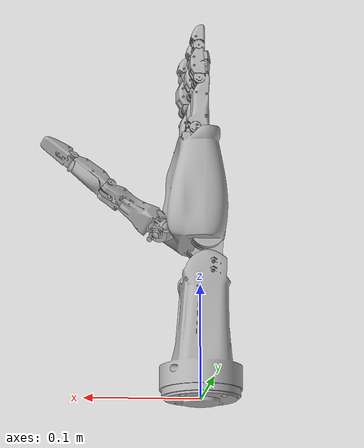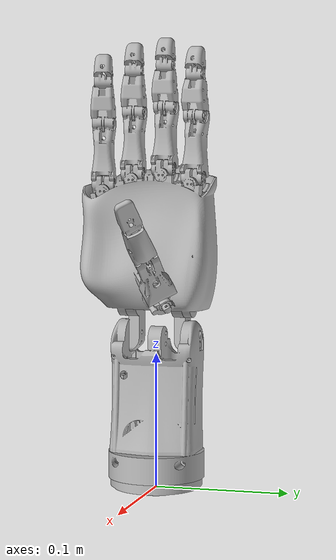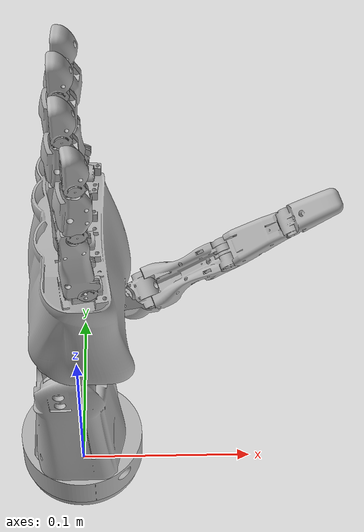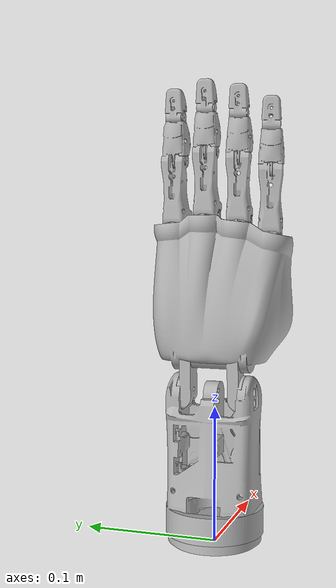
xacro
<?xml version="1.0" ?>
<robot name="dexhandv2_cobot_right" xmlns:xacro="http://www.ros.org/wiki/xacro">

<xacro:include filename="$(find dexhandv2_description)/urdf/materials.xacro" />
<xacro:include filename="$(find dexhandv2_description)/urdf/dexhandv2_cobot_right.trans" />
<xacro:include filename="$(find dexhandv2_description)/urdf/dexhandv2_cobot_right.gazebo" />
<link name="base_link">
  <inertial>
    <origin xyz="2.052703407136187e-15 2.220446049250313e-16 0.007619244404461584" rpy="0 0 0"/>
    <mass value="0.40106984932829953"/>
    <inertia ixx="0.000103" iyy="0.000103" izz="0.000181" ixy="0.0" iyz="0.0" ixz="0.0"/>
  </inertial>
  <visual>
    <origin xyz="0 0 0" rpy="0 0 0"/>
    <geometry>
      <mesh filename="package://dexhandv2_description/meshes/cobot_right/base_link.stl" scale="0.001 0.001 0.001"/>
    </geometry>
    <material name="silver"/>
  </visual>
  <collision>
    <origin xyz="0 0 0" rpy="0 0 0"/>
    <geometry>
      <mesh filename="package://dexhandv2_description/meshes/cobot_right/base_link.stl" scale="0.001 0.001 0.001"/>
    </geometry>
  </collision>
</link>

<link name="Index_Knuckle_1">
  <inertial>
    <origin xyz="-0.005617754616359744 -0.004262893684497563 0.0244593212098696" rpy="0 0 0"/>
    <mass value="0.057232258646826684"/>
    <inertia ixx="1.2e-05" iyy="1.1e-05" izz="2e-06" ixy="-0.0" iyz="-0.0" ixz="0.0"/>
  </inertial>
  <visual>
    <origin xyz="-0.006894 -0.034615 -0.230923" rpy="0 0 0"/>
    <geometry>
      <mesh filename="package://dexhandv2_description/meshes/cobot_right/Index_Knuckle_1.stl" scale="0.001 0.001 0.001"/>
    </geometry>
    <material name="silver"/>
  </visual>
  <collision>
    <origin xyz="-0.006894 -0.034615 -0.230923" rpy="0 0 0"/>
    <geometry>
      <mesh filename="package://dexhandv2_description/meshes/cobot_right/Index_Knuckle_1.stl" scale="0.001 0.001 0.001"/>
    </geometry>
  </collision>
</link>

<link name="Middle_Knuckle_1">
  <inertial>
    <origin xyz="-0.0053425374507652095 -0.004751344962067258 0.024431575198405636" rpy="0 0 0"/>
    <mass value="0.057232258646826684"/>
    <inertia ixx="1.2e-05" iyy="1.1e-05" izz="2e-06" ixy="0.0" iyz="0.0" ixz="0.0"/>
  </inertial>
  <visual>
    <origin xyz="-0.005646 -0.012104 -0.236978" rpy="0 0 0"/>
    <geometry>
      <mesh filename="package://dexhandv2_description/meshes/cobot_right/Middle_Knuckle_1.stl" scale="0.001 0.001 0.001"/>
    </geometry>
    <material name="silver"/>
  </visual>
  <collision>
    <origin xyz="-0.005646 -0.012104 -0.236978" rpy="0 0 0"/>
    <geometry>
      <mesh filename="package://dexhandv2_description/meshes/cobot_right/Middle_Knuckle_1.stl" scale="0.001 0.001 0.001"/>
    </geometry>
  </collision>
</link>

<link name="Ring_Knuckle_1">
  <inertial>
    <origin xyz="-0.004995552898363725 -0.005197955554373898 0.024413907325318923" rpy="0 0 0"/>
    <mass value="0.057232258646826684"/>
    <inertia ixx="1.2e-05" iyy="1.1e-05" izz="2e-06" ixy="0.0" iyz="0.0" ixz="0.0"/>
  </inertial>
  <visual>
    <origin xyz="-0.006759 0.01088 -0.233106" rpy="0 0 0"/>
    <geometry>
      <mesh filename="package://dexhandv2_description/meshes/cobot_right/Ring_Knuckle_1.stl" scale="0.001 0.001 0.001"/>
    </geometry>
    <material name="silver"/>
  </visual>
  <collision>
    <origin xyz="-0.006759 0.01088 -0.233106" rpy="0 0 0"/>
    <geometry>
      <mesh filename="package://dexhandv2_description/meshes/cobot_right/Ring_Knuckle_1.stl" scale="0.001 0.001 0.001"/>
    </geometry>
  </collision>
</link>

<link name="Pinky_Knuckle_1">
  <inertial>
    <origin xyz="-0.0038805527779705827 -0.005627871847661753 0.024520983733089308" rpy="0 0 0"/>
    <mass value="0.057232258646826684"/>
    <inertia ixx="1.2e-05" iyy="1.1e-05" izz="2e-06" ixy="0.0" iyz="0.0" ixz="0.0"/>
  </inertial>
  <visual>
    <origin xyz="-0.009742 0.032368 -0.224778" rpy="0 0 0"/>
    <geometry>
      <mesh filename="package://dexhandv2_description/meshes/cobot_right/Pinky_Knuckle_1.stl" scale="0.001 0.001 0.001"/>
    </geometry>
    <material name="silver"/>
  </visual>
  <collision>
    <origin xyz="-0.009742 0.032368 -0.224778" rpy="0 0 0"/>
    <geometry>
      <mesh filename="package://dexhandv2_description/meshes/cobot_right/Pinky_Knuckle_1.stl" scale="0.001 0.001 0.001"/>
    </geometry>
  </collision>
</link>

<link name="Index_Middle_1">
  <inertial>
    <origin xyz="-0.0013226867506370902 -0.007289091459419767 0.01408557787699416" rpy="0 0 0"/>
    <mass value="0.029055618634630877"/>
    <inertia ixx="2e-06" iyy="2e-06" izz="1e-06" ixy="-0.0" iyz="0.0" ixz="-0.0"/>
  </inertial>
  <visual>
    <origin xyz="-0.003362 -0.037608 -0.275941" rpy="0 0 0"/>
    <geometry>
      <mesh filename="package://dexhandv2_description/meshes/cobot_right/Index_Middle_1.stl" scale="0.001 0.001 0.001"/>
    </geometry>
    <material name="silver"/>
  </visual>
  <collision>
    <origin xyz="-0.003362 -0.037608 -0.275941" rpy="0 0 0"/>
    <geometry>
      <mesh filename="package://dexhandv2_description/meshes/cobot_right/Index_Middle_1.stl" scale="0.001 0.001 0.001"/>
    </geometry>
  </collision>
</link>

<link name="Middle_Middle_1">
  <inertial>
    <origin xyz="-0.0007483887502837826 -0.007382459502653912 0.01407915123683462" rpy="0 0 0"/>
    <mass value="0.029055618634630877"/>
    <inertia ixx="2e-06" iyy="2e-06" izz="1e-06" ixy="0.0" iyz="0.0" ixz="-0.0"/>
  </inertial>
  <visual>
    <origin xyz="-0.001646 -0.014754 -0.281978" rpy="0 0 0"/>
    <geometry>
      <mesh filename="package://dexhandv2_description/meshes/cobot_right/Middle_Middle_1.stl" scale="0.001 0.001 0.001"/>
    </geometry>
    <material name="silver"/>
  </visual>
  <collision>
    <origin xyz="-0.001646 -0.014754 -0.281978" rpy="0 0 0"/>
    <geometry>
      <mesh filename="package://dexhandv2_description/meshes/cobot_right/Middle_Middle_1.stl" scale="0.001 0.001 0.001"/>
    </geometry>
  </collision>
</link>

<link name="Ring_Middle_1">
  <inertial>
    <origin xyz="-0.0001527987693481221 -0.007419438842167106 0.014078367099663536" rpy="0 0 0"/>
    <mass value="0.029055618634630877"/>
    <inertia ixx="2e-06" iyy="2e-06" izz="1e-06" ixy="0.0" iyz="-0.0" ixz="-0.0"/>
  </inertial>
  <visual>
    <origin xyz="-0.002383 0.008588 -0.278091" rpy="0 0 0"/>
    <geometry>
      <mesh filename="package://dexhandv2_description/meshes/cobot_right/Ring_Middle_1.stl" scale="0.001 0.001 0.001"/>
    </geometry>
    <material name="silver"/>
  </visual>
  <collision>
    <origin xyz="-0.002383 0.008588 -0.278091" rpy="0 0 0"/>
    <geometry>
      <mesh filename="package://dexhandv2_description/meshes/cobot_right/Ring_Middle_1.stl" scale="0.001 0.001 0.001"/>
    </geometry>
  </collision>
</link>

<link name="Pinky_Middle_1">
  <inertial>
    <origin xyz="0.0008842937946964939 -0.007397317345788294 0.014062908068738944" rpy="0 0 0"/>
    <mass value="0.029055618634630877"/>
    <inertia ixx="2e-06" iyy="2e-06" izz="1e-06" ixy="0.0" iyz="-0.0" ixz="-0.0"/>
  </inertial>
  <visual>
    <origin xyz="-0.006307 0.030474 -0.269863" rpy="0 0 0"/>
    <geometry>
      <mesh filename="package://dexhandv2_description/meshes/cobot_right/Pinky_Middle_1.stl" scale="0.001 0.001 0.001"/>
    </geometry>
    <material name="silver"/>
  </visual>
  <collision>
    <origin xyz="-0.006307 0.030474 -0.269863" rpy="0 0 0"/>
    <geometry>
      <mesh filename="package://dexhandv2_description/meshes/cobot_right/Pinky_Middle_1.stl" scale="0.001 0.001 0.001"/>
    </geometry>
  </collision>
</link>

<link name="Index_Tip_1">
  <inertial>
    <origin xyz="-0.00031375635025414003 -0.0028004632135323754 0.007068969125634428" rpy="0 0 0"/>
    <mass value="0.018995895295817036"/>
    <inertia ixx="1e-06" iyy="1e-06" izz="0.0" ixy="-0.0" iyz="-0.0" ixz="0.0"/>
  </inertial>
  <visual>
    <origin xyz="-0.003141 -0.033424 -0.305943" rpy="0 0 0"/>
    <geometry>
      <mesh filename="package://dexhandv2_description/meshes/cobot_right/Index_Tip_1.stl" scale="0.001 0.001 0.001"/>
    </geometry>
    <material name="silver"/>
  </visual>
  <collision>
    <origin xyz="-0.003141 -0.033424 -0.305943" rpy="0 0 0"/>
    <geometry>
      <mesh filename="package://dexhandv2_description/meshes/cobot_right/Index_Tip_1.stl" scale="0.001 0.001 0.001"/>
    </geometry>
  </collision>
</link>

<link name="Midle_Tip_1">
  <inertial>
    <origin xyz="-0.00010221029944667464 -0.002819874019605326 0.0070681231302068825" rpy="0 0 0"/>
    <mass value="0.018995895295817036"/>
    <inertia ixx="1e-06" iyy="1e-06" izz="0.0" ixy="0.0" iyz="-0.0" ixz="0.0"/>
  </inertial>
  <visual>
    <origin xyz="-0.001646 -0.010554 -0.311978" rpy="0 0 0"/>
    <geometry>
      <mesh filename="package://dexhandv2_description/meshes/cobot_right/Midle_Tip_1.stl" scale="0.001 0.001 0.001"/>
    </geometry>
    <material name="silver"/>
  </visual>
  <collision>
    <origin xyz="-0.001646 -0.010554 -0.311978" rpy="0 0 0"/>
    <geometry>
      <mesh filename="package://dexhandv2_description/meshes/cobot_right/Midle_Tip_1.stl" scale="0.001 0.001 0.001"/>
    </geometry>
  </collision>
</link>

<link name="Ring_Tip_1">
  <inertial>
    <origin xyz="0.00011843326702077293 -0.002817998278507804 0.007068374926649412" rpy="0 0 0"/>
    <mass value="0.018995895295817036"/>
    <inertia ixx="1e-06" iyy="1e-06" izz="0.0" ixy="0.0" iyz="0.0" ixz="0.0"/>
  </inertial>
  <visual>
    <origin xyz="-0.002642 0.012772 -0.308092" rpy="0 0 0"/>
    <geometry>
      <mesh filename="package://dexhandv2_description/meshes/cobot_right/Ring_Tip_1.stl" scale="0.001 0.001 0.001"/>
    </geometry>
    <material name="silver"/>
  </visual>
  <collision>
    <origin xyz="-0.002642 0.012772 -0.308092" rpy="0 0 0"/>
    <geometry>
      <mesh filename="package://dexhandv2_description/meshes/cobot_right/Ring_Tip_1.stl" scale="0.001 0.001 0.001"/>
    </geometry>
  </collision>
</link>

<link name="Pinky_Tip_1">
  <inertial>
    <origin xyz="0.0005550954751855188 -0.002793293912342454 0.007057169178798339" rpy="0 0 0"/>
    <mass value="0.018995895295817036"/>
    <inertia ixx="1e-06" iyy="1e-06" izz="0.0" ixy="0.0" iyz="0.0" ixz="0.0"/>
  </inertial>
  <visual>
    <origin xyz="-0.007704 0.034606 -0.29984" rpy="0 0 0"/>
    <geometry>
      <mesh filename="package://dexhandv2_description/meshes/cobot_right/Pinky_Tip_1.stl" scale="0.001 0.001 0.001"/>
    </geometry>
    <material name="silver"/>
  </visual>
  <collision>
    <origin xyz="-0.007704 0.034606 -0.29984" rpy="0 0 0"/>
    <geometry>
      <mesh filename="package://dexhandv2_description/meshes/cobot_right/Pinky_Tip_1.stl" scale="0.001 0.001 0.001"/>
    </geometry>
  </collision>
</link>

<link name="Thumb_Prox_KC_1">
  <inertial>
    <origin xyz="-0.005783920817378968 -0.005234416836206375 0.005230066298108099" rpy="0 0 0"/>
    <mass value="0.010139940256668681"/>
    <inertia ixx="0.0" iyy="0.0" izz="0.0" ixy="-0.0" iyz="0.0" ixz="0.0"/>
  </inertial>
  <visual>
    <origin xyz="-0.038353 -0.017798 -0.140638" rpy="0 0 0"/>
    <geometry>
      <mesh filename="package://dexhandv2_description/meshes/cobot_right/Thumb_Prox_KC_1.stl" scale="0.001 0.001 0.001"/>
    </geometry>
    <material name="silver"/>
  </visual>
  <collision>
    <origin xyz="-0.038353 -0.017798 -0.140638" rpy="0 0 0"/>
    <geometry>
      <mesh filename="package://dexhandv2_description/meshes/cobot_right/Thumb_Prox_KC_1.stl" scale="0.001 0.001 0.001"/>
    </geometry>
  </collision>
</link>

<link name="Thumb_Dist_KC_1">
  <inertial>
    <origin xyz="0.007329033205531094 -3.805305769155956e-05 0.005827428222089509" rpy="0 0 0"/>
    <mass value="0.01817352538423656"/>
    <inertia ixx="1e-06" iyy="1e-06" izz="1e-06" ixy="0.0" iyz="-0.0" ixz="-0.0"/>
  </inertial>
  <visual>
    <origin xyz="-0.031128 -0.012 -0.145788" rpy="0 0 0"/>
    <geometry>
      <mesh filename="package://dexhandv2_description/meshes/cobot_right/Thumb_Dist_KC_1.stl" scale="0.001 0.001 0.001"/>
    </geometry>
    <material name="silver"/>
  </visual>
  <collision>
    <origin xyz="-0.031128 -0.012 -0.145788" rpy="0 0 0"/>
    <geometry>
      <mesh filename="package://dexhandv2_description/meshes/cobot_right/Thumb_Dist_KC_1.stl" scale="0.001 0.001 0.001"/>
    </geometry>
  </collision>
</link>

<link name="Thumb_Middle_1">
  <inertial>
    <origin xyz="0.013340753129466254 0.0051575404497526366 0.014104480771110733" rpy="0 0 0"/>
    <mass value="0.042415595330021844"/>
    <inertia ixx="3e-06" iyy="5e-06" izz="4e-06" ixy="0.0" iyz="-0.0" ixz="-1e-06"/>
  </inertial>
  <visual>
    <origin xyz="-0.083225 -0.009293 -0.178216" rpy="0 0 0"/>
    <geometry>
      <mesh filename="package://dexhandv2_description/meshes/cobot_right/Thumb_Middle_1.stl" scale="0.001 0.001 0.001"/>
    </geometry>
    <material name="silver"/>
  </visual>
  <collision>
    <origin xyz="-0.083225 -0.009293 -0.178216" rpy="0 0 0"/>
    <geometry>
      <mesh filename="package://dexhandv2_description/meshes/cobot_right/Thumb_Middle_1.stl" scale="0.001 0.001 0.001"/>
    </geometry>
  </collision>
</link>

<link name="Thumb_Tip_1">
  <inertial>
    <origin xyz="0.007064182715595849 0.00500357358946789 0.009797585836231582" rpy="0 0 0"/>
    <mass value="0.029857587762647974"/>
    <inertia ixx="1e-06" iyy="3e-06" izz="2e-06" ixy="0.0" iyz="-0.0" ixz="-1e-06"/>
  </inertial>
  <visual>
    <origin xyz="-0.114731 -0.009169 -0.202861" rpy="0 0 0"/>
    <geometry>
      <mesh filename="package://dexhandv2_description/meshes/cobot_right/Thumb_Tip_1.stl" scale="0.001 0.001 0.001"/>
    </geometry>
    <material name="silver"/>
  </visual>
  <collision>
    <origin xyz="-0.114731 -0.009169 -0.202861" rpy="0 0 0"/>
    <geometry>
      <mesh filename="package://dexhandv2_description/meshes/cobot_right/Thumb_Tip_1.stl" scale="0.001 0.001 0.001"/>
    </geometry>
  </collision>
</link>

<link name="Index_Knuckle_Cross_1">
  <inertial>
    <origin xyz="-0.008236956200840171 0.0007245443582209743 0.001600789482818915" rpy="0 0 0"/>
    <mass value="0.018067034327727577"/>
    <inertia ixx="1e-06" iyy="1e-06" izz="1e-06" ixy="0.0" iyz="0.0" ixz="-0.0"/>
  </inertial>
  <visual>
    <origin xyz="-0.013926 -0.029177 -0.226889" rpy="0 0 0"/>
    <geometry>
      <mesh filename="package://dexhandv2_description/meshes/cobot_right/Index_Knuckle_Cross_1.stl" scale="0.001 0.001 0.001"/>
    </geometry>
    <material name="silver"/>
  </visual>
  <collision>
    <origin xyz="-0.013926 -0.029177 -0.226889" rpy="0 0 0"/>
    <geometry>
      <mesh filename="package://dexhandv2_description/meshes/cobot_right/Index_Knuckle_Cross_1.stl" scale="0.001 0.001 0.001"/>
    </geometry>
  </collision>
</link>

<link name="Middle_Knuckle_Cross_1">
  <inertial>
    <origin xyz="-0.008276192239981339 2.213623919193261e-07 0.0015609602783075716" rpy="0 0 0"/>
    <mass value="0.018067034327727577"/>
    <inertia ixx="1e-06" iyy="1e-06" izz="1e-06" ixy="0.0" iyz="0.0" ixz="-0.0"/>
  </inertial>
  <visual>
    <origin xyz="-0.013146 -0.007304 -0.232978" rpy="0 0 0"/>
    <geometry>
      <mesh filename="package://dexhandv2_description/meshes/cobot_right/Middle_Knuckle_Cross_1.stl" scale="0.001 0.001 0.001"/>
    </geometry>
    <material name="silver"/>
  </visual>
  <collision>
    <origin xyz="-0.013146 -0.007304 -0.232978" rpy="0 0 0"/>
    <geometry>
      <mesh filename="package://dexhandv2_description/meshes/cobot_right/Middle_Knuckle_Cross_1.stl" scale="0.001 0.001 0.001"/>
    </geometry>
  </collision>
</link>

<link name="Ring_Knuckle_Cross_1">
  <inertial>
    <origin xyz="-0.00825056979269267 -0.0007198415715537147 0.0015306920863781825" rpy="0 0 0"/>
    <mass value="0.018067034327727577"/>
    <inertia ixx="1e-06" iyy="1e-06" izz="1e-06" ixy="-0.0" iyz="-0.0" ixz="-0.0"/>
  </inertial>
  <visual>
    <origin xyz="-0.014663 0.015009 -0.229135" rpy="0 0 0"/>
    <geometry>
      <mesh filename="package://dexhandv2_description/meshes/cobot_right/Ring_Knuckle_Cross_1.stl" scale="0.001 0.001 0.001"/>
    </geometry>
    <material name="silver"/>
  </visual>
  <collision>
    <origin xyz="-0.014663 0.015009 -0.229135" rpy="0 0 0"/>
    <geometry>
      <mesh filename="package://dexhandv2_description/meshes/cobot_right/Ring_Knuckle_Cross_1.stl" scale="0.001 0.001 0.001"/>
    </geometry>
  </collision>
</link>

<link name="Pinky_Knuckle_Cross_1">
  <inertial>
    <origin xyz="-0.008107509458758513 -0.001476079421691763 0.00173636118658535" rpy="0 0 0"/>
    <mass value="0.018067034327727577"/>
    <inertia ixx="1e-06" iyy="1e-06" izz="1e-06" ixy="-0.0" iyz="-0.0" ixz="-0.0"/>
  </inertial>
  <visual>
    <origin xyz="-0.017889 0.035753 -0.220601" rpy="0 0 0"/>
    <geometry>
      <mesh filename="package://dexhandv2_description/meshes/cobot_right/Pinky_Knuckle_Cross_1.stl" scale="0.001 0.001 0.001"/>
    </geometry>
    <material name="silver"/>
  </visual>
  <collision>
    <origin xyz="-0.017889 0.035753 -0.220601" rpy="0 0 0"/>
    <geometry>
      <mesh filename="package://dexhandv2_description/meshes/cobot_right/Pinky_Knuckle_Cross_1.stl" scale="0.001 0.001 0.001"/>
    </geometry>
  </collision>
</link>

<link name="Thumb_Knuckle_1">
  <inertial>
    <origin xyz="0.025838843475506086 -0.005221729505740706 0.0076838729235231" rpy="0 0 0"/>
    <mass value="0.06613687822002302"/>
    <inertia ixx="9e-06" iyy="1.8e-05" izz="1.3e-05" ixy="0.0" iyz="-1e-06" ixz="-7e-06"/>
  </inertial>
  <visual>
    <origin xyz="-0.03637 -0.0201 -0.156921" rpy="0 0 0"/>
    <geometry>
      <mesh filename="package://dexhandv2_description/meshes/cobot_right/Thumb_Knuckle_1.stl" scale="0.001 0.001 0.001"/>
    </geometry>
    <material name="silver"/>
  </visual>
  <collision>
    <origin xyz="-0.03637 -0.0201 -0.156921" rpy="0 0 0"/>
    <geometry>
      <mesh filename="package://dexhandv2_description/meshes/cobot_right/Thumb_Knuckle_1.stl" scale="0.001 0.001 0.001"/>
    </geometry>
  </collision>
</link>

<link name="Solid_Wrist_1">
  <inertial>
    <origin xyz="-0.039506132033453094 -0.009008686051580945 0.1284323760830919" rpy="0 0 0"/>
    <mass value="0.13506264462202147"/>
    <inertia ixx="6.4e-05" iyy="3e-05" izz="4.7e-05" ixy="-0.0" iyz="1e-06" ixz="-2e-06"/>
  </inertial>
  <visual>
    <origin xyz="-0.0322 -0.008656 0.001117" rpy="0 0 0"/>
    <geometry>
      <mesh filename="package://dexhandv2_description/meshes/cobot_right/Solid_Wrist_1.stl" scale="0.001 0.001 0.001"/>
    </geometry>
    <material name="silver"/>
  </visual>
  <collision>
    <origin xyz="-0.0322 -0.008656 0.001117" rpy="0 0 0"/>
    <geometry>
      <mesh filename="package://dexhandv2_description/meshes/cobot_right/Solid_Wrist_1.stl" scale="0.001 0.001 0.001"/>
    </geometry>
  </collision>
</link>

<link name="Palm_1">
  <inertial>
    <origin xyz="0.007689335992022399 0.020098888757707694 0.036007312684782106" rpy="0 0 0"/>
    <mass value="2.5693559159130035"/>
    <inertia ixx="0.003206" iyy="0.001945" izz="0.002103" ixy="4.6e-05" iyz="1.6e-05" ixz="5.9e-05"/>
  </inertial>
  <visual>
    <origin xyz="0.003854 0.021446 -0.141995" rpy="0 0 0"/>
    <geometry>
      <mesh filename="package://dexhandv2_description/meshes/cobot_right/Palm_1.stl" scale="0.001 0.001 0.001"/>
    </geometry>
    <material name="silver"/>
  </visual>
  <collision>
    <origin xyz="0.003854 0.021446 -0.141995" rpy="0 0 0"/>
    <geometry>
      <mesh filename="package://dexhandv2_description/meshes/cobot_right/Palm_1.stl" scale="0.001 0.001 0.001"/>
    </geometry>
  </collision>
</link>

<link name="Cobot_Forearm_1">
  <inertial>
    <origin xyz="-0.001451863595231196 -2.507795103765369e-05 0.04770523191866352" rpy="0 0 0"/>
    <mass value="0.8433305941464591"/>
    <inertia ixx="0.0014" iyy="0.001227" izz="0.00063" ixy="-6e-06" iyz="-2e-06" ixz="2.9e-05"/>
  </inertial>
  <visual>
    <origin xyz="-0.0 -0.0 -0.008" rpy="0 0 0"/>
    <geometry>
      <mesh filename="package://dexhandv2_description/meshes/cobot_right/Cobot_Forearm_1.stl" scale="0.001 0.001 0.001"/>
    </geometry>
    <material name="silver"/>
  </visual>
  <collision>
    <origin xyz="-0.0 -0.0 -0.008" rpy="0 0 0"/>
    <geometry>
      <mesh filename="package://dexhandv2_description/meshes/cobot_right/Cobot_Forearm_1.stl" scale="0.001 0.001 0.001"/>
    </geometry>
  </collision>
</link>

<joint name="R_Index_Pitch" type="revolute">
  <origin xyz="-0.007032 0.005438 0.004034" rpy="0 0 0"/>
  <parent link="Index_Knuckle_Cross_1"/>
  <child link="Index_Knuckle_1"/>
  <axis xyz="0.087537 0.996161 -0.000428"/>
  <limit upper="1.308997" lower="0.0" effort="100" velocity="100"/>
</joint>

<joint name="R_Middle_Pitch" type="revolute">
  <origin xyz="-0.0075 0.0048 0.004" rpy="0 0 0"/>
  <parent link="Middle_Knuckle_Cross_1"/>
  <child link="Middle_Knuckle_1"/>
  <axis xyz="-0.0 1.0 -0.0"/>
  <limit upper="1.308997" lower="0.0" effort="100" velocity="100"/>
</joint>

<joint name="R_Ring_Pitch" type="revolute">
  <origin xyz="-0.007904 0.004129 0.003971" rpy="0 0 0"/>
  <parent link="Ring_Knuckle_Cross_1"/>
  <child link="Ring_Knuckle_1"/>
  <axis xyz="-0.08702 0.996207 -0.00031"/>
  <limit upper="1.308997" lower="0.0" effort="100" velocity="100"/>
</joint>

<joint name="R_Pinky_Pitch" type="revolute">
  <origin xyz="-0.008147 0.003385 0.004177" rpy="0 0 0"/>
  <parent link="Pinky_Knuckle_Cross_1"/>
  <child link="Pinky_Knuckle_1"/>
  <axis xyz="-0.178318 0.983965 0.003854"/>
  <limit upper="1.308997" lower="0.0" effort="100" velocity="100"/>
</joint>

<joint name="R_Index_Flexor" type="revolute">
  <origin xyz="-0.003532 0.002993 0.045018" rpy="0 0 0"/>
  <parent link="Index_Knuckle_1"/>
  <child link="Index_Middle_1"/>
  <axis xyz="0.087537 0.996161 -0.000428"/>
  <limit upper="1.047198" lower="0.0" effort="100" velocity="100"/>
  </joint>

<joint name="R_Middle_Flexor" type="revolute">
  <origin xyz="-0.004 0.00265 0.045" rpy="0 0 0"/>
  <parent link="Middle_Knuckle_1"/>
  <child link="Middle_Middle_1"/>
  <axis xyz="-0.0 1.0 -0.0"/>
  <limit upper="1.047198" lower="0.0" effort="100" velocity="100"/>
</joint>

<joint name="R_Ring_Flexor" type="revolute">
  <origin xyz="-0.004376 0.002292 0.044985" rpy="0 0 0"/>
  <parent link="Ring_Knuckle_1"/>
  <child link="Ring_Middle_1"/>
  <axis xyz="-0.08702 0.996207 -0.00031"/>
  <limit upper="1.047198" lower="0.0" effort="100" velocity="100"/>
</joint>

<joint name="R_Pinky_Flexor" type="revolute">
  <origin xyz="-0.003435 0.001894 0.045085" rpy="0 0 0"/>
  <parent link="Pinky_Knuckle_1"/>
  <child link="Pinky_Middle_1"/>
  <axis xyz="-0.178318 0.983965 0.003854"/>
  <limit upper="1.047198" lower="0.0" effort="100" velocity="100"/>
</joint>

<joint name="R_Index_DIP" type="revolute">
  <origin xyz="-0.000221 -0.004184 0.030002" rpy="0 0 0"/>
  <parent link="Index_Middle_1"/>
  <child link="Index_Tip_1"/>
  <axis xyz="0.087537 0.996161 -0.000428"/>
  <limit upper="1.047198" lower="0.0" effort="100" velocity="100"/>
  <mimic joint="R_Index_Flexor" multiplier="1" offset="0"/>
</joint>

<joint name="R_Middle_DIP" type="revolute">
  <origin xyz="0.0 -0.0042 0.03" rpy="0 0 0"/>
  <parent link="Middle_Middle_1"/>
  <child link="Midle_Tip_1"/>
  <axis xyz="-0.0 1.0 -0.0"/>
  <limit upper="1.047198" lower="0.0" effort="100" velocity="100"/>
  <mimic joint="R_Middle_Flexor" multiplier="1" offset="0"/>
</joint>

<joint name="R_Ring_DIP" type="revolute">
  <origin xyz="0.000259 -0.004184 0.030001" rpy="0 0 0"/>
  <parent link="Ring_Middle_1"/>
  <child link="Ring_Tip_1"/>
  <axis xyz="-0.08702 0.996207 -0.00031"/>
  <limit upper="1.047198" lower="0.0" effort="100" velocity="100"/>
  <mimic joint="R_Ring_Flexor" multiplier="1" offset="0"/>
</joint>

<joint name="R_Pinky_DIP" type="revolute">
  <origin xyz="0.001397 -0.004132 0.029977" rpy="0 0 0"/>
  <parent link="Pinky_Middle_1"/>
  <child link="Pinky_Tip_1"/>
  <axis xyz="-0.178318 0.983965 0.003854"/>
  <limit upper="1.047198" lower="0.0" effort="100" velocity="100"/>
  <mimic joint="R_Pinky_Flexor" multiplier="1" offset="0"/>
</joint>

<joint name="R_Thumb_Yaw" type="revolute">
  <origin xyz="0.042207 0.039244 -0.001357" rpy="0 0 0"/>
  <parent link="Palm_1"/>
  <child link="Thumb_Prox_KC_1"/>
  <axis xyz="0.510615 0.562877 -0.649955"/>
  <limit upper="0.0872665" lower="-0.523599" effort="100" velocity="100"/>
</joint>

<joint name="R_Thumb_Roll" type="revolute">
  <origin xyz="-0.007225 -0.005798 0.00515" rpy="0 0 0"/>
  <parent link="Thumb_Prox_KC_1"/>
  <child link="Thumb_Dist_KC_1"/>
  <axis xyz="0.786356 0.0 0.617773"/>
  <limit upper="0.349066" lower="-0.349066" effort="100" velocity="100"/>
</joint>

<joint name="R_Thumb_Flexor" type="revolute">
  <origin xyz="0.046855 -0.010807 0.021295" rpy="0 0 0"/>
  <parent link="Thumb_Knuckle_1"/>
  <child link="Thumb_Middle_1"/>
  <axis xyz="0.34773 -0.826541 -0.442622"/>
  <limit upper="1.047198" lower="0.0" effort="100" velocity="100"/>
</joint>

<joint name="R_Thumb_DIP" type="revolute">
  <origin xyz="0.031506 -0.000124 0.024645" rpy="0 0 0"/>
  <parent link="Thumb_Middle_1"/>
  <child link="Thumb_Tip_1"/>
  <axis xyz="0.34773 -0.826541 -0.442622"/>
  <limit upper="1.047198" lower="0.0" effort="100" velocity="100"/>
  <mimic joint="R_Thumb_Flexor" multiplier="1" offset="0"/>
</joint>

<joint name="R_Index_Yaw" type="revolute">
  <origin xyz="0.01778 0.050623 0.084894" rpy="0 0 0"/>
  <parent link="Palm_1"/>
  <child link="Index_Knuckle_Cross_1"/>
  <axis xyz="0.996149 -0.087538 -0.004875"/>
  <limit upper="0.349066" lower="-0.349066" effort="100" velocity="100"/>
</joint>

<joint name="R_Middle_Yaw" type="revolute">
  <origin xyz="0.017 0.02875 0.090983" rpy="0 0 0"/>
  <parent link="Palm_1"/>
  <child link="Middle_Knuckle_Cross_1"/>
  <axis xyz="1.0 0.0 0.0"/>
  <limit upper="0.349066" lower="-0.349066" effort="100" velocity="100"/>
</joint>

<joint name="R_Ring_Yaw" type="revolute">
  <origin xyz="0.018517 0.006437 0.08714" rpy="0 0 0"/>
  <parent link="Palm_1"/>
  <child link="Ring_Knuckle_Cross_1"/>
  <axis xyz="0.9962 0.08702 0.003551"/>
  <limit upper="0.349066" lower="-0.349066" effort="100" velocity="100"/>
</joint>

<joint name="R_Pinky_Yaw" type="revolute">
  <origin xyz="0.021743 -0.014307 0.078606" rpy="0 0 0"/>
  <parent link="Palm_1"/>
  <child link="Pinky_Knuckle_Cross_1"/>
  <axis xyz="0.983736 0.178359 -0.021263"/>
  <limit upper="0.349066" lower="-0.349066" effort="100" velocity="100"/>
</joint>

<joint name="R_Thumb_Pitch" type="revolute">
  <origin xyz="0.005242 0.0081 0.011133" rpy="0 0 0"/>
  <parent link="Thumb_Dist_KC_1"/>
  <child link="Thumb_Knuckle_1"/>
  <axis xyz="0.34773 -0.826541 -0.442622"/>
  <limit upper="1.047198" lower="0.0" effort="100" velocity="100"/>
</joint>

<joint name="R_Rigid 28" type="fixed">
  <origin xyz="0.0322 0.008656 -0.009117" rpy="0 0 0"/>
  <parent link="Cobot_Forearm_1"/>
  <child link="Solid_Wrist_1"/>
</joint>

<joint name="R_Rigid 30" type="fixed">
  <origin xyz="-0.036054 -0.030102 0.143112" rpy="0 0 0"/>
  <parent link="Solid_Wrist_1"/>
  <child link="Palm_1"/>
</joint>

<joint name="R_Rigid 31" type="fixed">
  <origin xyz="0.0 0.0 0.008" rpy="0 0 0"/>
  <parent link="base_link"/>
  <child link="Cobot_Forearm_1"/>
</joint>

</robot>

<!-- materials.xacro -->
<robot name="dexhandv2_cobot_right" xmlns:xacro="http://www.ros.org/wiki/xacro" >

<material name="silver">
  <color rgba="0.700 0.700 0.700 1.000"/>
</material>

</robot>

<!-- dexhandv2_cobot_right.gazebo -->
<robot name="dexhandv2_cobot_right" xmlns:xacro="http://www.ros.org/wiki/xacro" >

<xacro:property name="body_color" value="Gazebo/Silver" />

<gazebo>
  <plugin name="control" filename="libgazebo_ros_control.so"/>
</gazebo>
<gazebo reference="base_link">
  <material>${body_color}</material>
  <mu1>0.2</mu1>
  <mu2>0.2</mu2>
  <selfCollide>true</selfCollide>
  <gravity>true</gravity>
</gazebo>

<gazebo reference="Index_Knuckle_1">
  <material>${body_color}</material>
  <mu1>0.2</mu1>
  <mu2>0.2</mu2>
  <selfCollide>true</selfCollide>
</gazebo>

<gazebo reference="Middle_Knuckle_1">
  <material>${body_color}</material>
  <mu1>0.2</mu1>
  <mu2>0.2</mu2>
  <selfCollide>true</selfCollide>
</gazebo>

<gazebo reference="Ring_Knuckle_1">
  <material>${body_color}</material>
  <mu1>0.2</mu1>
  <mu2>0.2</mu2>
  <selfCollide>true</selfCollide>
</gazebo>

<gazebo reference="Pinky_Knuckle_1">
  <material>${body_color}</material>
  <mu1>0.2</mu1>
  <mu2>0.2</mu2>
  <selfCollide>true</selfCollide>
</gazebo>

<gazebo reference="Index_Middle_1">
  <material>${body_color}</material>
  <mu1>0.2</mu1>
  <mu2>0.2</mu2>
  <selfCollide>true</selfCollide>
</gazebo>

<gazebo reference="Middle_Middle_1">
  <material>${body_color}</material>
  <mu1>0.2</mu1>
  <mu2>0.2</mu2>
  <selfCollide>true</selfCollide>
</gazebo>

<gazebo reference="Ring_Middle_1">
  <material>${body_color}</material>
  <mu1>0.2</mu1>
  <mu2>0.2</mu2>
  <selfCollide>true</selfCollide>
</gazebo>

<gazebo reference="Pinky_Middle_1">
  <material>${body_color}</material>
  <mu1>0.2</mu1>
  <mu2>0.2</mu2>
  <selfCollide>true</selfCollide>
</gazebo>

<gazebo reference="Index_Tip_1">
  <material>${body_color}</material>
  <mu1>0.2</mu1>
  <mu2>0.2</mu2>
  <selfCollide>true</selfCollide>
</gazebo>

<gazebo reference="Midle_Tip_1">
  <material>${body_color}</material>
  <mu1>0.2</mu1>
  <mu2>0.2</mu2>
  <selfCollide>true</selfCollide>
</gazebo>

<gazebo reference="Ring_Tip_1">
  <material>${body_color}</material>
  <mu1>0.2</mu1>
  <mu2>0.2</mu2>
  <selfCollide>true</selfCollide>
</gazebo>

<gazebo reference="Pinky_Tip_1">
  <material>${body_color}</material>
  <mu1>0.2</mu1>
  <mu2>0.2</mu2>
  <selfCollide>true</selfCollide>
</gazebo>

<gazebo reference="Thumb_Prox_KC_1">
  <material>${body_color}</material>
  <mu1>0.2</mu1>
  <mu2>0.2</mu2>
  <selfCollide>true</selfCollide>
</gazebo>

<gazebo reference="Thumb_Dist_KC_1">
  <material>${body_color}</material>
  <mu1>0.2</mu1>
  <mu2>0.2</mu2>
  <selfCollide>true</selfCollide>
</gazebo>

<gazebo reference="Thumb_Middle_1">
  <material>${body_color}</material>
  <mu1>0.2</mu1>
  <mu2>0.2</mu2>
  <selfCollide>true</selfCollide>
</gazebo>

<gazebo reference="Thumb_Tip_1">
  <material>${body_color}</material>
  <mu1>0.2</mu1>
  <mu2>0.2</mu2>
  <selfCollide>true</selfCollide>
</gazebo>

<gazebo reference="Index_Knuckle_Cross_1">
  <material>${body_color}</material>
  <mu1>0.2</mu1>
  <mu2>0.2</mu2>
  <selfCollide>true</selfCollide>
</gazebo>

<gazebo reference="Middle_Knuckle_Cross_1">
  <material>${body_color}</material>
  <mu1>0.2</mu1>
  <mu2>0.2</mu2>
  <selfCollide>true</selfCollide>
</gazebo>

<gazebo reference="Ring_Knuckle_Cross_1">
  <material>${body_color}</material>
  <mu1>0.2</mu1>
  <mu2>0.2</mu2>
  <selfCollide>true</selfCollide>
</gazebo>

<gazebo reference="Pinky_Knuckle_Cross_1">
  <material>${body_color}</material>
  <mu1>0.2</mu1>
  <mu2>0.2</mu2>
  <selfCollide>true</selfCollide>
</gazebo>

<gazebo reference="Thumb_Knuckle_1">
  <material>${body_color}</material>
  <mu1>0.2</mu1>
  <mu2>0.2</mu2>
  <selfCollide>true</selfCollide>
</gazebo>

<gazebo reference="Solid_Wrist_1">
  <material>${body_color}</material>
  <mu1>0.2</mu1>
  <mu2>0.2</mu2>
  <selfCollide>true</selfCollide>
</gazebo>

<gazebo reference="Palm_1">
  <material>${body_color}</material>
  <mu1>0.2</mu1>
  <mu2>0.2</mu2>
  <selfCollide>true</selfCollide>
</gazebo>

<gazebo reference="Cobot_Forearm_1">
  <material>${body_color}</material>
  <mu1>0.2</mu1>
  <mu2>0.2</mu2>
  <selfCollide>true</selfCollide>
</gazebo>

</robot>
